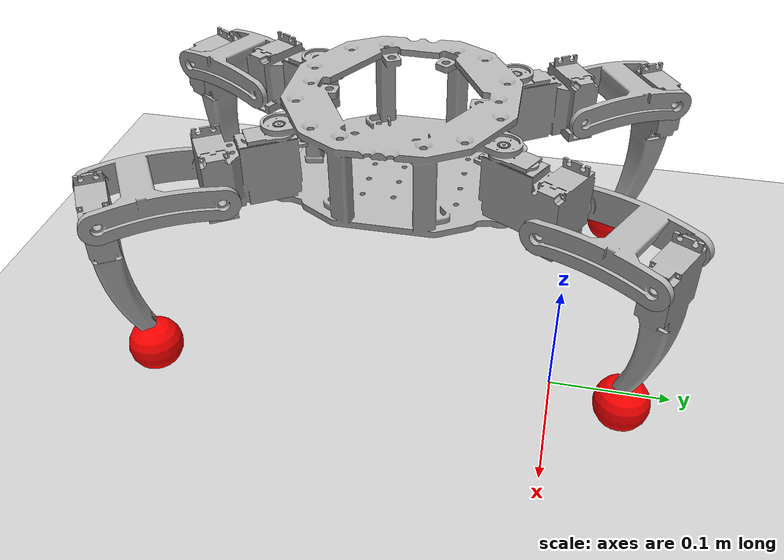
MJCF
<mujoco model="full_body">

  <!-- ── Physics settings ───────────────────────────────────────────── -->
  <option timestep="0.002"
          integrator="implicitfast"
          cone="elliptic"
          noslip_iterations="3"
          noslip_tolerance="1e-6"/>

  <compiler angle="radian"/>

  <!-- ── Contact buffer size ───────────────────────────────────────── -->
  <size nconmax="200" njmax="500"/>

  <!-- ── Meshes ─────────────────────────────────────────────────────── -->
  <asset>
    <mesh name="base_link"           content_type="model/stl" file="base_link.stl"           scale="0.001 0.001 0.001"/>
    <mesh name="front_right_hip_1"   content_type="model/stl" file="front_right_hip_1.stl"   scale="0.001 0.001 0.001"/>
    <mesh name="front_right_thigh_1" content_type="model/stl" file="front_right_thigh_1.stl" scale="0.001 0.001 0.001"/>
    <mesh name="front_right_calf_1"  content_type="model/stl" file="front_right_calf_1.stl"  scale="0.001 0.001 0.001"/>
    <mesh name="back_right_hip_1"    content_type="model/stl" file="back_right_hip_1.stl"    scale="0.001 0.001 0.001"/>
    <mesh name="back_right_thigh_1"  content_type="model/stl" file="back_right_thigh_1.stl"  scale="0.001 0.001 0.001"/>
    <mesh name="back_right_calf_1"   content_type="model/stl" file="back_right_calf_1.stl"   scale="0.001 0.001 0.001"/>
    <mesh name="back_left_hip_1"     content_type="model/stl" file="back_left_hip_1.stl"     scale="0.001 0.001 0.001"/>
    <mesh name="back_left_thigh_1"   content_type="model/stl" file="back_left_thigh_1.stl"   scale="0.001 0.001 0.001"/>
    <mesh name="back_left_calf_1"    content_type="model/stl" file="back_left_calf_1.stl"    scale="0.001 0.001 0.001"/>
    <mesh name="front_left_hip_1"    content_type="model/stl" file="front_left_hip_1.stl"    scale="0.001 0.001 0.001"/>
    <mesh name="front_left_thigh_1"  content_type="model/stl" file="front_left_thigh_1.stl"  scale="0.001 0.001 0.001"/>
    <mesh name="front_left_calf_1"   content_type="model/stl" file="front_left_calf_1.stl"   scale="0.001 0.001 0.001"/>
  </asset>

  <!-- ── Exclude self-collisions between connected links ───────────── -->
  <contact>
    <exclude body1="base_link"           body2="front_right_hip_1"/>
    <exclude body1="base_link"           body2="front_left_hip_1"/>
    <exclude body1="base_link"           body2="back_right_hip_1"/>
    <exclude body1="base_link"           body2="back_left_hip_1"/>
    <exclude body1="front_right_hip_1"   body2="front_right_thigh_1"/>
    <exclude body1="front_left_hip_1"    body2="front_left_thigh_1"/>
    <exclude body1="back_right_hip_1"    body2="back_right_thigh_1"/>
    <exclude body1="back_left_hip_1"     body2="back_left_thigh_1"/>
    <exclude body1="front_right_thigh_1" body2="front_right_calf_1"/>
    <exclude body1="front_left_thigh_1"  body2="front_left_calf_1"/>
    <exclude body1="back_right_thigh_1"  body2="back_right_calf_1"/>
    <exclude body1="back_left_thigh_1"   body2="back_left_calf_1"/>
  </contact>

  <worldbody>

    <!-- ── Ground plane ──────────────────────────────────────────────── -->
    <geom name="floor"
          type="plane"
          size="10 10 0.1"
          friction="1.0 0.005 0.0001"
          rgba="0.8 0.8 0.8 1"/>

    <!-- ── Robot base ─────────────────────────────────────────────────── -->
    <!--
      Spawn height 0.20m — closer to actual standing height.
      Reduced from 0.35m which was causing immediate collapse on spawn.
    -->
    <body name="base_link" pos="0 0 0.20">
      <freejoint name="root"/>
      <geom type="mesh" rgba="0.7 0.7 0.7 1" mesh="base_link"/>
      <!--
        Mass reduced to 0.5kg (was 1.0kg placeholder).
        Real base plate of a small quadruped is typically 300-600g.
        Lower mass = easier to balance = faster learning.
      -->
      <inertial pos="0 0 0" mass="0.5" diaginertia="0.005 0.005 0.008"/>

      <body name="front_right_hip_1" pos="0.043129 -0.202081 0.052509">
        <inertial pos="0.0148383 -0.0253437 -0.0275562"
                  quat="0.617072 0.744367 0.143453 0.211093"
                  mass="0.0732638"
                  diaginertia="4.27665e-05 3.7307e-05 1.89265e-05"/>
        <joint name="FR_hip" pos="0 0 0" axis="0 0 1"
               range="-0.698 0.698"
               type="hinge" damping="10"/>
        <geom pos="-0.043129 0.202081 -0.052509" quat="1 0 0 0"
              type="mesh" rgba="0.7 0.7 0.7 1" mesh="front_right_hip_1"/>

        <body name="front_right_thigh_1" pos="0.00227 -0.054411 -0.036096">
          <inertial pos="0.0464562 -0.0240354 0.00339576"
                    quat="0.5 0.5 -0.5 0.5"
                    mass="0.0439753"
                    diaginertia="3.9e-05 2.2e-05 2.2e-05"/>
          <joint name="FR_thigh" pos="0 0 0" axis="-0.852079 -0.523413 0"
                 range="-1.047 1.047"
                 type="hinge" damping="2"/>
          <geom pos="-0.045399 0.256492 -0.016413" quat="1 0 0 0"
                type="mesh" rgba="0.7 0.7 0.7 1" mesh="front_right_thigh_1"/>

          <body name="front_right_calf_1" pos="0.041873 -0.068166 0">
            <inertial pos="0.0203393 0.0147238 -0.0393018"
                      quat="0.502873 0.0397879 -0.0297899 0.86293"
                      mass="0.0644351"
                      diaginertia="8.53651e-05 8.23948e-05 8.24012e-06"/>
            <joint name="FR_calf" pos="0 0 0" axis="0.852079 0.523413 0"
                   range="-1.571 0.175"
                   type="hinge" damping="2"/>
            <geom pos="-0.087272 0.324658 -0.016413" quat="1 0 0 0"
                  type="mesh" rgba="0.7 0.7 0.7 1" mesh="front_right_calf_1"/>
            <!-- Foot sphere: size increased to 0.02m for stable ground contact -->
            <geom name="FR_foot" type="sphere" size="0.02"
                  pos="0.015 0.030 -0.13"
                  friction="1.5 0.005 0.0001"
                  condim="6" rgba="1 0 0 1"/>
          </body>
        </body>
      </body>

      <!-- ══════════════════════════════════════════════════════════════
           BACK RIGHT LEG
           ══════════════════════════════════════════════════════════════ -->
      <body name="back_right_hip_1" pos="-0.058276 -0.20441 0.052509">
        <inertial pos="-0.0145291 -0.0255227 -0.0275562"
                  quat="0.661906 0.695728 -0.248758 -0.126341"
                  mass="0.0732638"
                  diaginertia="4.36886e-05 3.7e-05 1.83114e-05"/>
        <joint name="BR_hip" pos="0 0 0" axis="0 0 1"
               range="-0.698 0.698"
               type="hinge" damping="10"/>
        <geom pos="0.058276 0.20441 -0.052509" quat="1 0 0 0"
              type="mesh" rgba="0.7 0.7 0.7 1" mesh="back_right_hip_1"/>

        <body name="back_right_thigh_1" pos="-0.045986 -0.029172 -0.036096">
          <inertial pos="0.00241261 -0.0522499 0.00339577"
                    quat="0.5 0.5 -0.5 0.5"
                    mass="0.0439751"
                    diaginertia="3.9e-05 2.2e-05 2.2e-05"/>
          <joint name="BR_thigh" pos="0 0 0" axis="-0.879328 0.476216 0"
                 range="-1.047 1.047"
                 type="hinge" damping="2"/>
          <geom pos="0.104262 0.233582 -0.016413" quat="1 0 0 0"
                type="mesh" rgba="0.7 0.7 0.7 1" mesh="back_right_thigh_1"/>

          <body name="back_right_calf_1" pos="-0.038097 -0.070346 0">
            <inertial pos="0.0212869 -0.0132637 -0.0393323"
                      quat="0.831909 -0.00377097 -0.00549776 0.554871"
                      mass="0.0644455"
                      diaginertia="8.54161e-05 8.25972e-05 7.98667e-06"/>
            <joint name="BR_calf" pos="0 0 0" axis="0.879328 -0.476216 0"
                   range="-1.571 0.175"
                   type="hinge" damping="2"/>
            <geom pos="0.142359 0.303928 -0.016413" quat="1 0 0 0"
                  type="mesh" rgba="0.7 0.7 0.7 1" mesh="back_right_calf_1"/>
            <geom name="BR_foot" type="sphere" size="0.02"
                  pos="0.025 -0.010 -0.13"
                  friction="1.5 0.005 0.0001"
                  condim="6" rgba="1 0 0 1"/>
          </body>
        </body>
      </body>

      <!-- ══════════════════════════════════════════════════════════════
           BACK LEFT LEG
           ══════════════════════════════════════════════════════════════ -->
      <body name="back_left_hip_1" pos="-0.062364 -0.053822 0.052509">
        <inertial pos="-0.0158976 0.0246937 -0.0275562"
                  quat="0.713623 0.640117 0.173549 0.225551"
                  mass="0.0732638"
                  diaginertia="4.3093e-05 3.72593e-05 1.86477e-05"/>
        <joint name="BL_hip" pos="0 0 0" axis="0 0 1"
               range="-0.698 0.698"
               type="hinge" damping="10"/>
        <geom pos="0.062364 0.053822 -0.052509" quat="1 0 0 0"
              type="mesh" rgba="0.7 0.7 0.7 1" mesh="back_left_hip_1"/>

        <body name="back_left_thigh_1" pos="-0.047506 0.026624 -0.036096">
          <inertial pos="-0.000438035 0.0523033 0.00339655"
                    quat="0.5 0.5 -0.5 0.5"
                    mass="0.0439749"
                    diaginertia="3.9e-05 2.2e-05 2.2e-05"/>
          <joint name="BL_thigh" pos="0 0 0" axis="-0.852079 -0.523413 0"
                 range="-1.047 1.047"
                 type="hinge" damping="2"/>
          <geom pos="0.10987 0.027198 -0.016413" quat="1 0 0 0"
                type="mesh" rgba="0.7 0.7 0.7 1" mesh="back_left_thigh_1"/>

          <body name="back_left_calf_1" pos="-0.041873 0.068166 0">
            <inertial pos="0.0223309 0.0114758 -0.0393146"
                      quat="0.469881 -0.0472631 0.0189879 0.881259"
                      mass="0.0644461"
                      diaginertia="8.54047e-05 8.2394e-05 8.20127e-06"/>
            <joint name="BL_calf" pos="0 0 0" axis="-0.852079 -0.523413 0"
                   range="-1.571 0.175"
                   type="hinge" damping="2"/>
            <geom pos="0.151743 -0.040968 -0.016413" quat="1 0 0 0"
                  type="mesh" rgba="0.7 0.7 0.7 1" mesh="back_left_calf_1"/>
            <geom name="BL_foot" type="sphere" size="0.02"
                  pos="0.025 -0.005 -0.13"
                  friction="1.5 0.005 0.0001"
                  condim="6" rgba="1 0 0 1"/>
          </body>
        </body>
      </body>

      <!-- ══════════════════════════════════════════════════════════════
           FRONT LEFT LEG
           ══════════════════════════════════════════════════════════════ -->
      <body name="front_left_hip_1" pos="0.038966 -0.050873 0.052509">
        <inertial pos="0.0134364 0.0261145 -0.0275562"
                  quat="0.745779 0.62474 -0.193385 -0.126948"
                  mass="0.0732638"
                  diaginertia="4.41171e-05 3.7275e-05 1.86079e-05"/>
        <joint name="FL_hip" pos="0 0 0" axis="0 0 1"
               range="-0.698 0.698"
               type="hinge" damping="10"/>
        <geom pos="-0.038966 0.050873 -0.052509" quat="1 0 0 0"
              type="mesh" rgba="0.7 0.7 0.7 1" mesh="front_left_hip_1"/>

        <body name="front_left_thigh_1" pos="-0.000696 0.054454 -0.036096">
          <inertial pos="0.0450769 0.0265304 0.00339655"
                    quat="0.5 0.5 -0.5 0.5"
                    mass="0.0439751"
                    diaginertia="3.9e-05 2.2e-05 2.2e-05"/>
          <joint name="FL_thigh" pos="0 0 0" axis="-0.879328 0.476216 0"
                 range="-1.047 1.047"
                 type="hinge" damping="2"/>
          <geom pos="-0.03827 -0.003581 -0.016413" quat="1 0 0 0"
                type="mesh" rgba="0.7 0.7 0.7 1" mesh="front_left_thigh_1"/>

          <body name="front_left_calf_1" pos="0.038097 0.070346 0">
            <inertial pos="0.0211091 -0.0135973 -0.0392904"
                      quat="0.856194 -0.0327991 0.0345557 0.514452"
                      mass="0.0644287"
                      diaginertia="8.52732e-05 8.24228e-05 8.30395e-06"/>
            <joint name="FL_calf" pos="0 0 0" axis="-0.879328 0.476216 0"
                   range="-1.571 0.175"
                   type="hinge" damping="2"/>
            <geom pos="-0.076367 -0.073927 -0.016413" quat="1 0 0 0"
                  type="mesh" rgba="0.7 0.7 0.7 1" mesh="front_left_calf_1"/>
            <geom name="FL_foot" type="sphere" size="0.02"
                  pos="0.015 -0.025 -0.13"
                  friction="1.5 0.005 0.0001"
                  condim="6" rgba="1 0 0 1"/>
          </body>
        </body>
      </body>

    </body>
  </worldbody>

  <!-- ── Actuators ──────────────────────────────────────────────────── -->
  <actuator>
    <!-- FL leg -->
    <position name="FL_hip"   joint="FL_hip"   kp="40"
              ctrllimited="true" ctrlrange="-0.698 0.698"
              forcelimited="true" forcerange="-1.0 1.0"/>
    <position name="FL_thigh" joint="FL_thigh" kp="30"
              ctrllimited="true" ctrlrange="-1.047 1.047"
              forcelimited="true" forcerange="-1.0 1.0"/>
    <position name="FL_calf"  joint="FL_calf"  kp="30"
              ctrllimited="true" ctrlrange="-1.571 0.175"
              forcelimited="true" forcerange="-1.0 1.0"/>

    <!-- FR leg -->
    <position name="FR_hip"   joint="FR_hip"   kp="40"
              ctrllimited="true" ctrlrange="-0.698 0.698"
              forcelimited="true" forcerange="-1.0 1.0"/>
    <position name="FR_thigh" joint="FR_thigh" kp="30"
              ctrllimited="true" ctrlrange="-1.047 1.047"
              forcelimited="true" forcerange="-1.0 1.0"/>
    <position name="FR_calf"  joint="FR_calf"  kp="30"
              ctrllimited="true" ctrlrange="-1.571 0.175"
              forcelimited="true" forcerange="-1.0 1.0"/>

    <!-- BL leg -->
    <position name="BL_hip"   joint="BL_hip"   kp="40"
              ctrllimited="true" ctrlrange="-0.698 0.698"
              forcelimited="true" forcerange="-1.0 1.0"/>
    <position name="BL_thigh" joint="BL_thigh" kp="30"
              ctrllimited="true" ctrlrange="-1.047 1.047"
              forcelimited="true" forcerange="-1.0 1.0"/>
    <position name="BL_calf"  joint="BL_calf"  kp="30"
              ctrllimited="true" ctrlrange="-1.571 0.175"
              forcelimited="true" forcerange="-1.0 1.0"/>

    <!-- BR leg -->
    <position name="BR_hip"   joint="BR_hip"   kp="40"
              ctrllimited="true" ctrlrange="-0.698 0.698"
              forcelimited="true" forcerange="-1.0 1.0"/>
    <position name="BR_thigh" joint="BR_thigh" kp="30"
              ctrllimited="true" ctrlrange="-1.047 1.047"
              forcelimited="true" forcerange="-1.0 1.0"/>
    <position name="BR_calf"  joint="BR_calf"  kp="30"
              ctrllimited="true" ctrlrange="-1.571 0.175"
              forcelimited="true" forcerange="-1.0 1.0"/>
  </actuator>

</mujoco>
